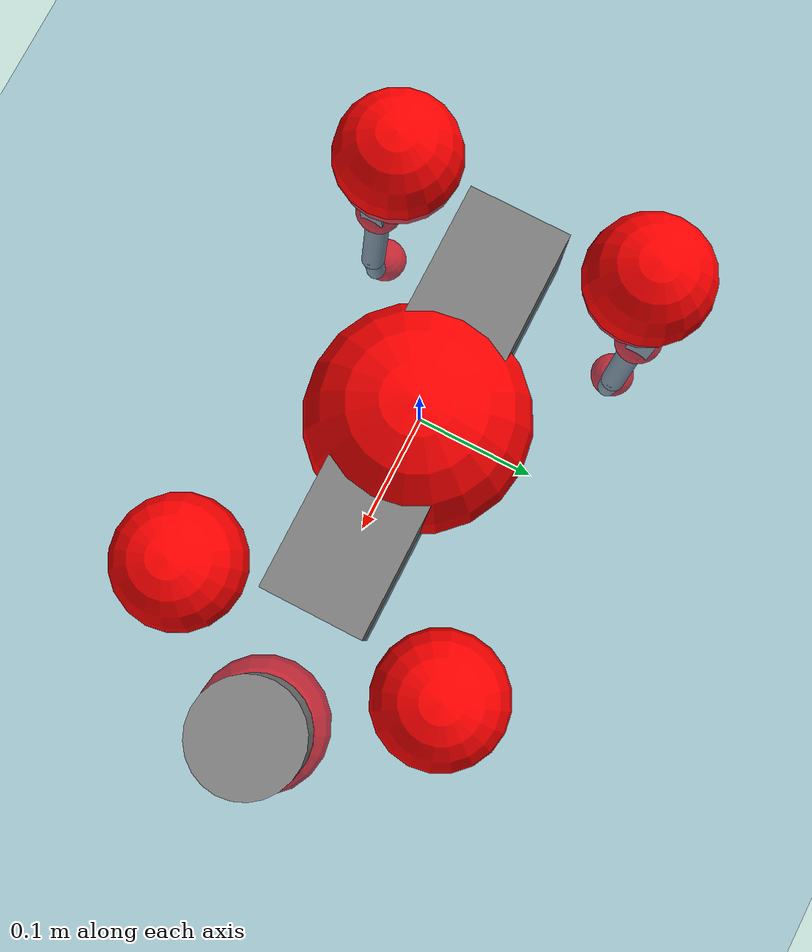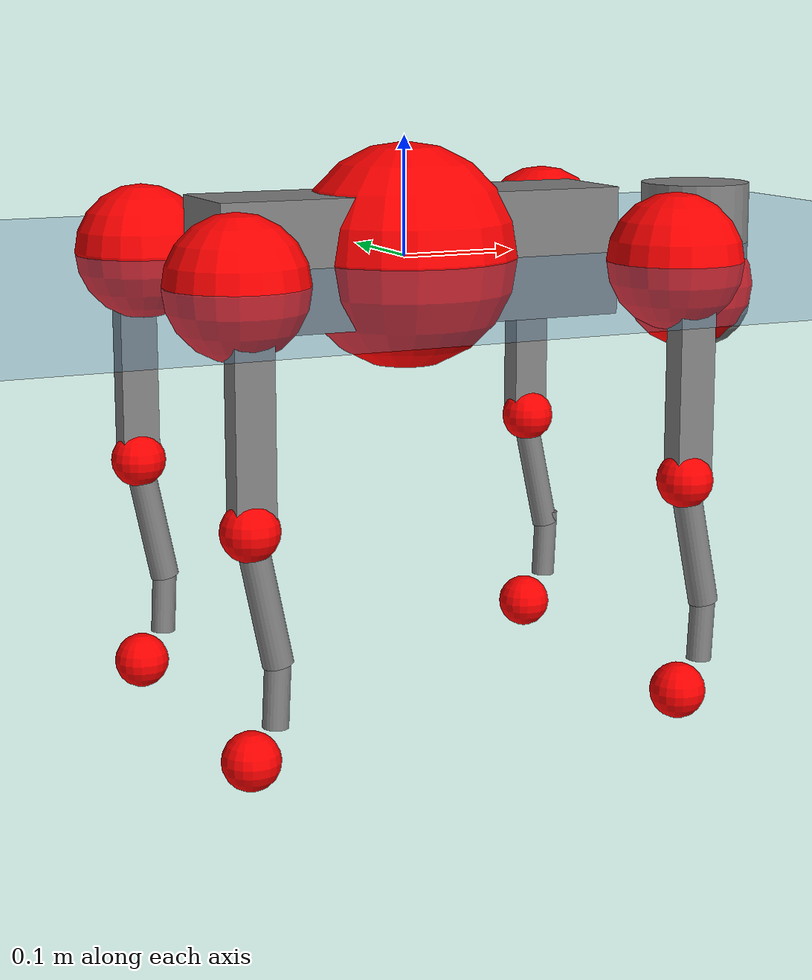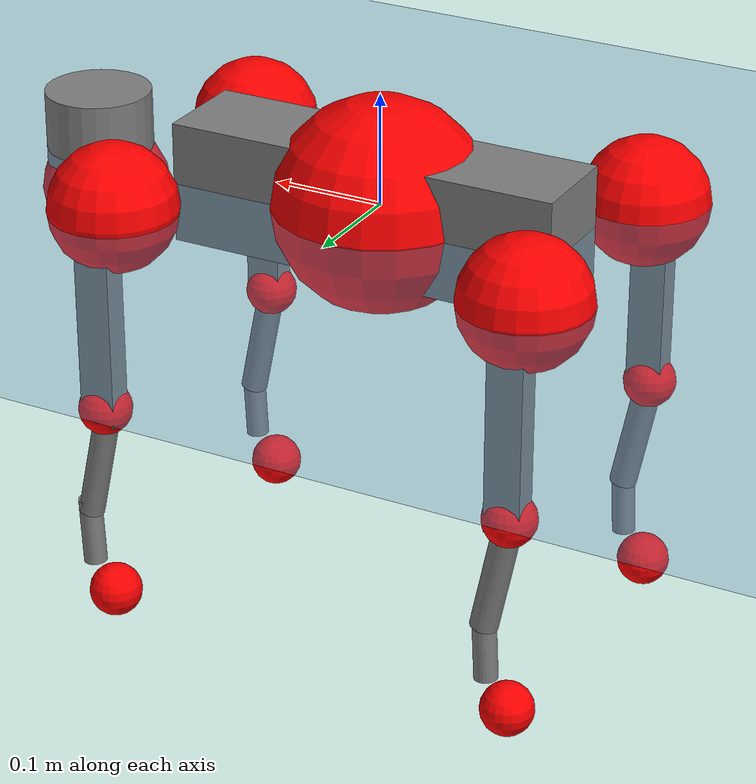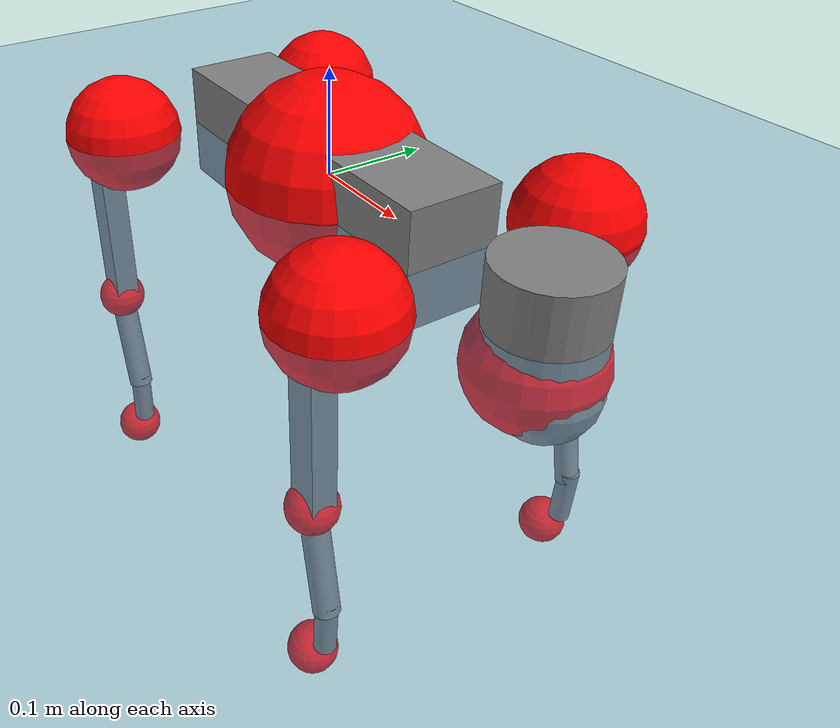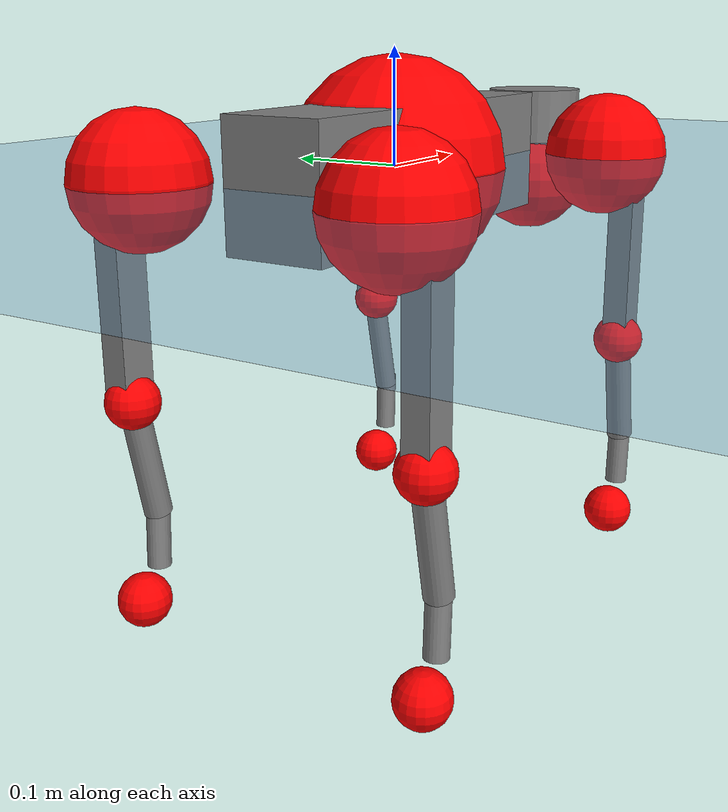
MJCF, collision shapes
<mujoco model="go2">
  <compiler angle="radian" assetdir="assets" balanceinertia="true" inertiafromgeom="false"/>

  <option timestep="0.005" density="1.2" viscosity="2e-05"/>

  <size nkey="1"/>

  <visual>
    <quality shadowsize="8192"/>
    <map shadowclip="0.5"/>
  </visual>

  <default>
    <default class="/">
      <geom contype="0" conaffinity="0" group="1" solref="-1000 -80"/>
      <site size="0.01 0.005 0.005" group="5"/>
      <general forcelimited="true" biastype="affine" gainprm="20" biasprm="0 -20 -0.5"/>
      <default class="go2">
        <joint armature="0.01" damping="0.01" frictionloss="0.2"/>
        <geom condim="1" margin="0.001"/>
        <default class="visual">
          <geom type="mesh" group="2"/>
        </default>
        <default class="collision">
          <geom group="3"/>
          <default class="foot">
            <geom size="0.022 0 0" condim="6" priority="1" friction="0.8 0.02 0.01" solimp="0.015 1 0.022"/>
          </default>
        </default>
        <default class="reward_collision_sphere">
          <geom group="5" rgba="1 0 0 1"/>
        </default>
      </default>
    </default>
  </default>

  <asset>
    <texture type="skybox" colorspace="auto" name="//unnamed_texture_0" builtin="gradient" rgb1="0.95 0.95 0.95" rgb2="0.95 0.95 0.95" width="100" height="600"/>
    <texture type="2d" colorspace="auto" name="texplane" builtin="checker" rgb1="0.345 0.575 0.748" rgb2="0.345 0.575 0.748" markrgb="1 1 1" width="512" height="512"/>
    <material name="MatPlane" class="/" texture="texplane" texuniform="true" texrepeat="2 2" specular="0.9"/>
    <material name="metal" class="/" rgba="0.9 0.95 0.95 1"/>
    <material name="black" class="/" rgba="0 0 0 1"/>
    <material name="white" class="/"/>
    <material name="gray" class="/" rgba="0.671705 0.692426 0.77427 1"/>
    <mesh name="base_0" class="/" file="base_0.obj"/>
    <mesh name="base_1" class="/" file="base_1.obj"/>
    <mesh name="base_2" class="/" file="base_2.obj"/>
    <mesh name="base_3" class="/" file="base_3.obj"/>
    <mesh name="base_4" class="/" file="base_4.obj"/>
    <mesh name="hip_0" class="/" file="hip_0.obj"/>
    <mesh name="hip_1" class="/" file="hip_1.obj"/>
    <mesh name="thigh_0" class="/" file="thigh_0.obj"/>
    <mesh name="thigh_1" class="/" file="thigh_1.obj"/>
    <mesh name="thigh_mirror_0" class="/" file="thigh_mirror_0.obj"/>
    <mesh name="thigh_mirror_1" class="/" file="thigh_mirror_1.obj"/>
    <mesh name="calf_0" class="/" file="calf_0.obj"/>
    <mesh name="calf_1" class="/" file="calf_1.obj"/>
    <mesh name="calf_mirror_0" class="/" file="calf_mirror_0.obj"/>
    <mesh name="calf_mirror_1" class="/" file="calf_mirror_1.obj"/>
    <mesh name="foot" class="/" file="foot.obj"/>
  </asset>

  <worldbody>
    <geom name="floor" class="/" size="100 100 0.125" type="plane" group="0" material="MatPlane"/>
    <light name="toplight_shadow" class="/" pos="0 0 5" dir="0.0990148 0.0990148 -0.990148" type="directional" ambient="0.04 0.04 0.04" diffuse="0.55 0.55 0.55" specular="0.12 0.12 0.12"/>
    <light name="toplight_fill" class="/" pos="0 0 5" dir="0.0990148 0.0990148 -0.990148" type="directional" castshadow="false" ambient="0.04 0.04 0.04" diffuse="0.3 0.3 0.3" specular="0.08 0.08 0.08"/>
    <body name="trunk" childclass="go2" pos="0.000108575 -0.00177627 0.00043896" quat="1 -8.71201e-07 -3.73876e-07 1.75963e-07">
      <inertial pos="0.0199149 -0.00216192 -0.00480148" quat="0.0122616 0.711802 -0.00360734 0.702264" mass="5.83059" diaginertia="0.102112 0.0968809 0.0112148"/>
      <joint name="//unnamed_joint_0" type="free" armature="0" damping="0" frictionloss="0"/>
      <geom name="//unnamed_geom_1" class="visual" material="black" mesh="base_0"/>
      <geom name="//unnamed_geom_2" class="visual" material="black" mesh="base_1"/>
      <geom name="//unnamed_geom_3" class="visual" material="black" mesh="base_2"/>
      <geom name="//unnamed_geom_4" class="visual" material="white" mesh="base_3"/>
      <geom name="//unnamed_geom_5" class="visual" material="gray" mesh="base_4"/>
      <geom name="trunk_1" class="collision" size="0.178446 0.0443506 0.0540745" type="box"/>
      <geom name="trunk_2" class="collision" size="0.0474338 0.0426904" pos="0.282264 0 0.00856454" type="cylinder"/>
      <geom name="trunk_3" class="collision" size="0.0445878" pos="0.290187 0 -0.0513873"/>
      <geom name="//unnamed_geom_9" class="reward_collision_sphere" size="0.0948676"/>
      <geom name="//unnamed_geom_10" class="reward_collision_sphere" size="0.0569205" pos="0.277312 0 -0.0385404"/>
      <site name="imu" pos="-0.0171782 0.00182578 0.0273979" size="0.00948676"/>
      <camera name="track" pos="0 -1.99835 0" quat="0.707107 0.707107 0 0" mode="trackcom"/>
      <camera name="ego_camera" pos="0.309005 0 0.0385404" quat="-0.5 -0.5 0.5 0.5"/>
      <body name="FL_hip" pos="0.19205 0.0491279 0.00297078" quat="1 2.99818e-05 -0.000202156 0.000890712">
        <inertial pos="-0.004987 0.00207544 0.000188679" quat="0.497921 0.498542 0.505967 0.497522" mass="0.565778" diaginertia="0.000841306 0.000576703 0.000222409"/>
        <joint name="FL_hip_joint" pos="0 0 0" axis="1 -0.000377591 -0.000279002" stiffness="0.0148646" range="-0.996593 1.04928" armature="0.00917188" damping="0" frictionloss="0.200276"/>
        <geom name="//unnamed_geom_11" class="visual" material="metal" mesh="hip_0"/>
        <geom name="//unnamed_geom_12" class="visual" material="gray" mesh="hip_1"/>
        <geom name="//unnamed_geom_13" class="collision" size="0.0436391 0.0189735" pos="0 0.0799338 0" quat="0.707107 0.707107 0 0" type="cylinder"/>
        <geom name="//unnamed_geom_14" class="reward_collision_sphere" size="0.0569205" pos="0 0.0699421 0"/>
        <body name="FL_thigh" pos="-5.83369e-05 0.0978176 0.00211335" quat="1 -0.000664253 0.000322784 0.000169116">
          <inertial pos="-0.00252869 -0.0215231 -0.028382" quat="0.829301 0.0791545 -0.0102818 0.553072" mass="0.984074" diaginertia="0.00573069 0.0058549 0.000412815"/>
          <joint name="FL_thigh_joint" pos="0 0 0" axis="0.0139417 0.999883 0.00630443" stiffness="0.00714699" range="-1.57125 3.54257" armature="0.0104432" damping="0.003096" frictionloss="0.181428"/>
          <geom name="//unnamed_geom_15" class="visual" material="metal" mesh="thigh_0"/>
          <geom name="//unnamed_geom_16" class="visual" material="gray" mesh="thigh_1"/>
          <geom name="//unnamed_geom_17" class="collision" size="0.101034 0.0116213 0.0161275" pos="0 0 -0.0912124" quat="0.707107 0 0.707107 0" type="box"/>
          <body name="FL_calf" pos="0.000888989 -0.00311746 -0.181846" quat="1 -2.48835e-05 2.73703e-05 8.36885e-05">
            <inertial pos="0.00731681 -0.000609653 -0.123329" quat="0.710566 0.00175308 -0.00465998 0.703613" mass="0.205432" diaginertia="0.00138694 0.00150122 2.36332e-05"/>
            <joint name="FL_calf_joint" pos="0 0 0" axis="0.00420857 0.999975 -0.00564377" stiffness="6.82284e-05" range="-2.77544 -0.844957" armature="0.00913161" damping="0.00347367" frictionloss="0.188581"/>
            <geom name="//unnamed_geom_18" class="visual" material="gray" mesh="calf_0"/>
            <geom name="//unnamed_geom_19" class="visual" material="black" mesh="calf_1"/>
            <geom name="FL_calf0" class="collision" size="0.0113841 0.0569205" pos="0.0079232 0 -0.0513873" quat="0.994493 0 -0.104807 0" type="cylinder"/>
            <geom name="//unnamed_geom_21" class="collision" size="0.0104354 0.030832" pos="0.019808 0 -0.126755" quat="0.999688 0 0.0249974 0" type="cylinder"/>
            <geom name="//unnamed_geom_22" class="visual" pos="0 0 -0.182425" quat="1 0 0 0" material="black" mesh="foot"/>
            <geom name="FL_foot" class="foot" size="0.0169141" pos="-0.0019808 0 -0.182425"/>
            <geom name="//unnamed_geom_24" class="reward_collision_sphere" size="0.0237169"/>
            <geom name="//unnamed_geom_25" class="reward_collision_sphere" size="0.0237169" pos="-0.0019808 0 -0.182425"/>
            <site name="FL_foot" class="foot" pos="-0.0019808 0 -0.182425" size="0.00948676"/>
          </body>
        </body>
      </body>
      <body name="FR_hip" pos="0.191081 -0.0471069 -0.00180262" quat="1 -5.47583e-05 0.000233798 0.000156147">
        <inertial pos="-0.00420526 -0.00219537 -0.00144033" quat="0.498425 0.505894 0.500812 0.494805" mass="0.565558" diaginertia="0.000858625 0.000577512 0.000227845"/>
        <joint name="FR_hip_joint" pos="0 0 0" axis="0.999992 0.00380484 0.00135481" stiffness="0.00364719" range="-1.05083 1.03658" armature="0.0089534" damping="0.0147981" frictionloss="0.180904"/>
        <geom name="//unnamed_geom_26" class="visual" pos="0 1.24331e-09 5.3328e-08" quat="4.63268e-05 1 0 0" material="metal" mesh="hip_0"/>
        <geom name="//unnamed_geom_27" class="visual" pos="0 2.01555e-09 -1.31901e-07" quat="4.63268e-05 1 0 0" material="gray" mesh="hip_1"/>
        <geom name="//unnamed_geom_28" class="collision" size="0.0436391 0.0189735" pos="0 -0.0799338 0" quat="0.707107 0.707107 0 0" type="cylinder"/>
        <geom name="//unnamed_geom_29" class="reward_collision_sphere" size="0.0569205" pos="0 -0.0699421 0"/>
        <body name="FR_thigh" pos="0.00296679 -0.0931166 0.00285571" quat="1 7.38589e-05 1.55782e-05 -4.02924e-05">
          <inertial pos="-0.00247456 0.0197173 -0.0284229" quat="0.549359 -0.0187367 0.0852865 0.831011" mass="1.02651" diaginertia="0.00585515 0.0059728 0.00041968"/>
          <joint name="FR_thigh_joint" pos="0 0 0" axis="0.000796149 -0.999999 0.000634194" stiffness="0.00381939" range="-3.54209 1.56728" armature="0.00964366" damping="0.00966975" frictionloss="0.18949"/>
          <geom name="//unnamed_geom_30" class="visual" material="metal" mesh="thigh_mirror_0"/>
          <geom name="//unnamed_geom_31" class="visual" material="gray" mesh="thigh_mirror_1"/>
          <geom name="//unnamed_geom_32" class="collision" size="0.101034 0.0116213 0.0161275" pos="0 0 -0.0912124" quat="0.707107 0 0.707107 0" type="box"/>
          <body name="FR_calf" pos="-0.00265235 3.46495e-05 -0.183073" quat="0.999999 -0.00047132 0.000362955 0.000973996">
            <inertial pos="0.00559976 0.00070497 -0.120349" quat="0.705949 -0.0041333 0.00211712 0.708248" mass="0.20748" diaginertia="0.00140562 0.00146276 2.41969e-05"/>
            <joint name="FR_calf_joint" pos="0 0 0" axis="0.0045094 -0.999915 0.0122393" range="0.829254 2.73121" armature="0.0106358" damping="0.0226365" frictionloss="0.168835"/>
            <geom name="//unnamed_geom_33" class="visual" material="gray" mesh="calf_mirror_0"/>
            <geom name="//unnamed_geom_34" class="visual" material="black" mesh="calf_mirror_1"/>
            <geom name="FR_calf0" class="collision" size="0.0123328 0.0569205" pos="0.009904 0 -0.0513873" quat="0.995004 0 -0.0998334 0" type="cylinder"/>
            <geom name="//unnamed_geom_36" class="collision" size="0.0104354 0.030832" pos="0.019808 0 -0.126755" quat="0.999688 0 0.0249974 0" type="cylinder"/>
            <geom name="//unnamed_geom_37" class="visual" pos="0 0 -0.182425" quat="1 0 0 0" material="black" mesh="foot"/>
            <geom name="FR_foot" class="foot" size="0.0210845" pos="-0.0019808 0 -0.182425"/>
            <geom name="//unnamed_geom_39" class="reward_collision_sphere" size="0.0237169"/>
            <geom name="//unnamed_geom_40" class="reward_collision_sphere" size="0.0237169" pos="-0.0019808 0 -0.182425"/>
            <site name="FR_foot" class="foot" pos="-0.0019808 0 -0.182425" size="0.00948676"/>
          </body>
        </body>
      </body>
      <body name="RL_hip" pos="-0.191225 0.047268 0.000662124" quat="1 6.28222e-05 -4.53547e-05 -8.44498e-05">
        <inertial pos="0.00536181 0.000256394 0.000532867" quat="0.505837 0.498045 0.493161 0.502864" mass="0.566863" diaginertia="0.000837954 0.000588501 0.000220212"/>
        <joint name="RL_hip_joint" pos="0 0 0" axis="-0.999948 0.00127493 -0.0101383" stiffness="0.00432887" range="-1.06519 1.05576" armature="0.00964006" damping="0.012032" frictionloss="0.182938"/>
        <geom name="//unnamed_geom_41" class="visual" pos="-1.16688e-09 0 -2.28735e-07" quat="4.63268e-05 0 1 0" material="metal" mesh="hip_0"/>
        <geom name="//unnamed_geom_42" class="visual" pos="-1.89165e-09 0 -2.02856e-07" quat="4.63268e-05 0 1 0" material="gray" mesh="hip_1"/>
        <geom name="//unnamed_geom_43" class="collision" size="0.0436391 0.0189735" pos="0 0.0799338 0" quat="0.707107 0.707107 0 0" type="cylinder"/>
        <geom name="//unnamed_geom_44" class="reward_collision_sphere" size="0.0569205" pos="0 0.0699421 0"/>
        <body name="RL_thigh" pos="-0.000744255 0.0955924 -0.00183285" quat="1 0.000152304 -0.000125407 -0.000330032">
          <inertial pos="-0.00340633 -0.0225198 -0.0306545" quat="0.829581 0.0867333 -0.0211512 0.551203" mass="1.00512" diaginertia="0.00568147 0.00571074 0.000398438"/>
          <joint name="RL_thigh_joint" pos="0 0 0" axis="-0.00308462 0.99998 0.00544731" stiffness="0.00095416" range="-0.557135 4.54932" armature="0.00982513" damping="0" frictionloss="0.185692"/>
          <geom name="//unnamed_geom_45" class="visual" material="metal" mesh="thigh_0"/>
          <geom name="//unnamed_geom_46" class="visual" material="gray" mesh="thigh_1"/>
          <geom name="//unnamed_geom_47" class="collision" size="0.101034 0.0116213 0.0161275" pos="0 0 -0.0912124" quat="0.707107 0 0.707107 0" type="box"/>
          <body name="RL_calf" pos="-0.000857479 -0.00321195 -0.183366" quat="1 -0.000456837 0.00029566 -6.16817e-05">
            <inertial pos="0.00572398 -0.000861488 -0.120886" quat="0.709684 0.0031131 -0.00294632 0.704507" mass="0.209423" diaginertia="0.00147186 0.00145892 2.47049e-05"/>
            <joint name="RL_calf_joint" pos="0 0 0" axis="-0.00662747 0.999977 -0.00163678" range="-2.66865 -0.87019" armature="0.00961423" damping="0.00605661" frictionloss="0.192132"/>
            <geom name="//unnamed_geom_48" class="visual" material="gray" mesh="calf_0"/>
            <geom name="//unnamed_geom_49" class="visual" material="black" mesh="calf_1"/>
            <geom name="RL_calf0" class="collision" size="0.0123328 0.0569205" pos="0.009904 0 -0.0513873" quat="0.995004 0 -0.0998334 0" type="cylinder"/>
            <geom name="//unnamed_geom_51" class="collision" size="0.0104354 0.030832" pos="0.019808 0 -0.126755" quat="0.999688 0 0.0249974 0" type="cylinder"/>
            <geom name="//unnamed_geom_52" class="visual" pos="0 0 -0.182425" quat="1 0 0 0" material="black" mesh="foot"/>
            <geom name="RL_foot" class="foot" size="0.0175757" pos="-0.0019808 0 -0.182425"/>
            <geom name="//unnamed_geom_54" class="reward_collision_sphere" size="0.0237169"/>
            <geom name="//unnamed_geom_55" class="reward_collision_sphere" size="0.0237169" pos="-0.0019808 0 -0.182425"/>
            <site name="RL_foot" class="foot" pos="-0.0019808 0 -0.182425" size="0.00948676"/>
          </body>
        </body>
      </body>
      <body name="RR_hip" pos="-0.192194 -0.0474711 -0.00238039" quat="0.999999 0.000808067 -0.000608771 -0.000119943">
        <inertial pos="0.00441181 0.000309201 -0.000975213" quat="0.502772 0.493537 0.498156 0.505452" mass="0.58508" diaginertia="0.00086409 0.000590201 0.000229273"/>
        <joint name="RR_hip_joint" pos="0 0 0" axis="-0.999939 0.0086943 -0.00688399" range="-1.04829 0.998452" armature="0.00949998" damping="0.00479034" frictionloss="0.192501"/>
        <geom name="//unnamed_geom_56" class="visual" pos="1.16718e-09 1.24331e-09 -2.82063e-07" quat="2.14617e-09 4.63268e-05 4.63268e-05 -1" material="metal" mesh="hip_0"/>
        <geom name="//unnamed_geom_57" class="visual" pos="1.8909e-09 2.01555e-09 -7.09551e-08" quat="2.14617e-09 4.63268e-05 4.63268e-05 -1" material="gray" mesh="hip_1"/>
        <geom name="//unnamed_geom_58" class="collision" size="0.0436391 0.0189735" pos="0 -0.0799338 0" quat="0.707107 0.707107 0 0" type="cylinder"/>
        <geom name="//unnamed_geom_59" class="reward_collision_sphere" size="0.0569205" pos="0 -0.0699421 0"/>
        <body name="RR_thigh" pos="0.000122379 -0.0939189 0.000265842" quat="0.999999 -0.000377069 0.000792847 -0.000765446">
          <inertial pos="-0.0033534 0.0199048 -0.0273875" quat="0.551359 -0.0242925 0.0854483 0.829525" mass="0.982428" diaginertia="0.00566229 0.00579339 0.000402388"/>
          <joint name="RR_thigh_joint" pos="0 0 0" axis="0.00813461 -0.999963 -0.00284812" range="-4.54231 0.532469" armature="0.00920155" damping="0.0200142" frictionloss="0.18441"/>
          <geom name="//unnamed_geom_60" class="visual" material="metal" mesh="thigh_mirror_0"/>
          <geom name="//unnamed_geom_61" class="visual" material="gray" mesh="thigh_mirror_1"/>
          <geom name="//unnamed_geom_62" class="collision" size="0.101034 0.0116213 0.0161275" pos="0 0 -0.0912124" quat="0.707107 0 0.707107 0" type="box"/>
          <body name="RR_calf" pos="-0.00198859 -0.000924241 -0.183311" quat="1 -1.59916e-05 -3.29654e-05 -7.72313e-05">
            <inertial pos="0.0086001 0.000612532 -0.120329" quat="0.702697 -0.00540917 -0.00223727 0.711466" mass="0.203889" diaginertia="0.00145863 0.00147146 2.41652e-05"/>
            <joint name="RR_calf_joint" pos="0 0 0" axis="0.00784606 -0.999952 -0.00587893" range="0.798515 2.77708" armature="0.00834436" damping="0.00767316" frictionloss="0.186512"/>
            <geom name="//unnamed_geom_63" class="visual" material="gray" mesh="calf_mirror_0"/>
            <geom name="//unnamed_geom_64" class="visual" material="black" mesh="calf_mirror_1"/>
            <geom name="RR_calf0" class="collision" size="0.0123328 0.0569205" pos="0.009904 0 -0.0513873" quat="0.995004 0 -0.0998334 0" type="cylinder"/>
            <geom name="//unnamed_geom_66" class="collision" size="0.0104354 0.030832" pos="0.019808 0 -0.126755" quat="0.999688 0 0.0249974 0" type="cylinder"/>
            <geom name="//unnamed_geom_67" class="visual" pos="0 0 -0.182425" quat="1 0 0 0" material="black" mesh="foot"/>
            <geom name="RR_foot" class="foot" size="0.0197461" pos="-0.0019808 0 -0.182425"/>
            <geom name="//unnamed_geom_69" class="reward_collision_sphere" size="0.0237169"/>
            <geom name="//unnamed_geom_70" class="reward_collision_sphere" size="0.0237169" pos="-0.0019808 0 -0.182425"/>
            <site name="RR_foot" class="foot" pos="-0.0019808 0 -0.182425" size="0.00948676"/>
          </body>
        </body>
      </body>
    </body>
  </worldbody>

  <contact>
    <pair class="/" geom1="floor" geom2="FL_foot" name="//unnamed_contact_0"/>
    <pair class="/" geom1="floor" geom2="FR_foot" name="//unnamed_contact_1"/>
    <pair class="/" geom1="floor" geom2="RL_foot" name="//unnamed_contact_2"/>
    <pair class="/" geom1="floor" geom2="RR_foot" name="//unnamed_contact_3"/>
  </contact>

  <actuator>
    <general name="FL_hip" class="/" joint="FL_hip_joint" forcerange="-24.6751 24.6751" gainprm="20.277" biasprm="0 -20.277 -0.462821"/>
    <general name="FL_thigh" class="/" joint="FL_thigh_joint" forcerange="-21.7592 21.7592" gainprm="20.277" biasprm="0 -20.277 -0.462821"/>
    <general name="FL_calf" class="/" joint="FL_calf_joint" forcerange="-44.6531 44.6531" gainprm="20.277" biasprm="0 -20.277 -0.462821"/>
    <general name="FR_hip" class="/" joint="FR_hip_joint" forcerange="-24.5821 24.5821" gainprm="20.277" biasprm="0 -20.277 -0.462821"/>
    <general name="FR_thigh" class="/" joint="FR_thigh_joint" forcerange="-24.5893 24.5893" gainprm="20.277" biasprm="0 -20.277 -0.462821"/>
    <general name="FR_calf" class="/" joint="FR_calf_joint" forcerange="-44.7598 44.7598" gainprm="20.277" biasprm="0 -20.277 -0.462821"/>
    <general name="RL_hip" class="/" joint="RL_hip_joint" forcerange="-23.2693 23.2693" gainprm="20.277" biasprm="0 -20.277 -0.462821"/>
    <general name="RL_thigh" class="/" joint="RL_thigh_joint" forcerange="-22.3201 22.3201" gainprm="20.277" biasprm="0 -20.277 -0.462821"/>
    <general name="RL_calf" class="/" joint="RL_calf_joint" forcerange="-42.5235 42.5235" gainprm="20.277" biasprm="0 -20.277 -0.462821"/>
    <general name="RR_hip" class="/" joint="RR_hip_joint" forcerange="-20.2941 20.2941" gainprm="20.277" biasprm="0 -20.277 -0.462821"/>
    <general name="RR_thigh" class="/" joint="RR_thigh_joint" forcerange="-22.5082 22.5082" gainprm="20.277" biasprm="0 -20.277 -0.462821"/>
    <general name="RR_calf" class="/" joint="RR_calf_joint" forcerange="-42.6522 42.6522" gainprm="20.277" biasprm="0 -20.277 -0.462821"/>
  </actuator>

  <sensor>
    <gyro site="imu" name="imu_angular_velocity"/>
    <velocimeter site="imu" name="imu_linear_velocity"/>
    <framelinvel objtype="site" objname="FL_foot" name="FL_foot_global_linear_velocity"/>
    <framelinvel objtype="site" objname="FR_foot" name="FR_foot_global_linear_velocity"/>
    <framelinvel objtype="site" objname="RL_foot" name="RL_foot_global_linear_velocity"/>
    <framelinvel objtype="site" objname="RR_foot" name="RR_foot_global_linear_velocity"/>
  </sensor>

  <keyframe>
    <key name="home" qpos="0 0 0.325 1 0 0 0 0.1 0.8 -1.5 -0.1 -0.8 1.5 -0.1 0.8 -1.5 0.1 -0.8 1.5"/>
  </keyframe>
</mujoco>
